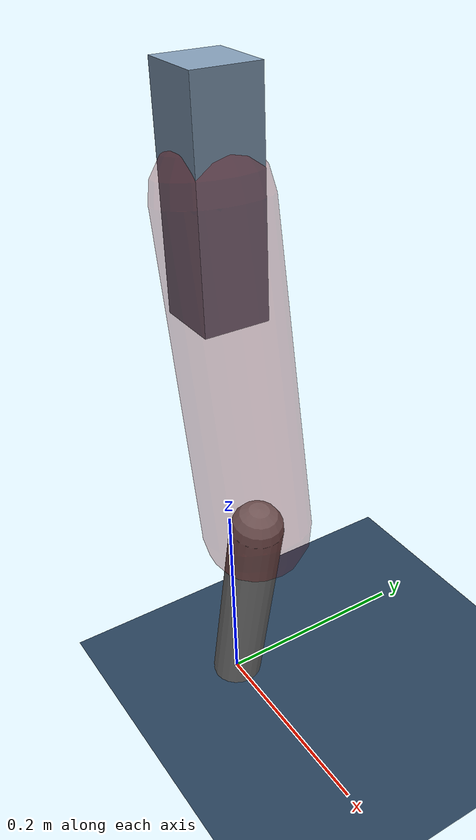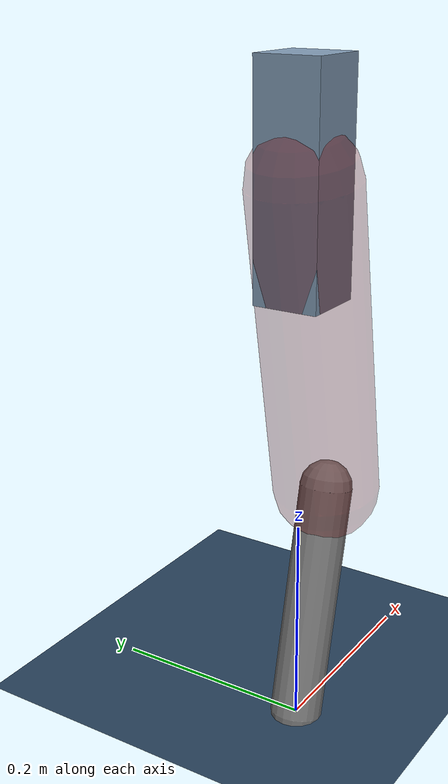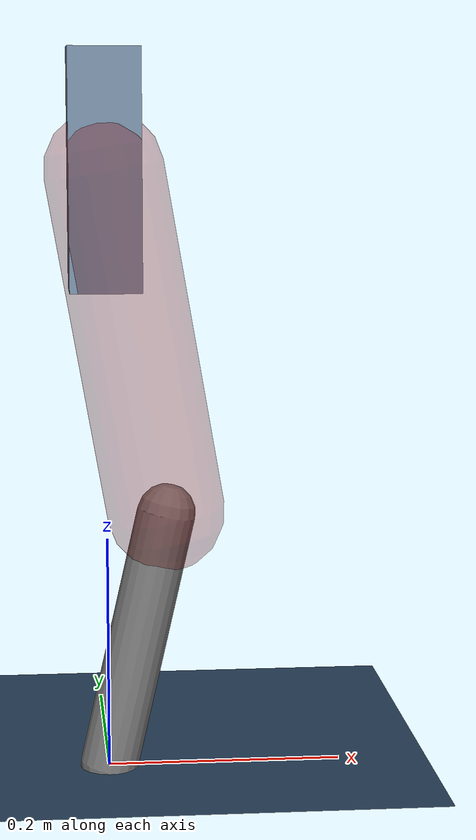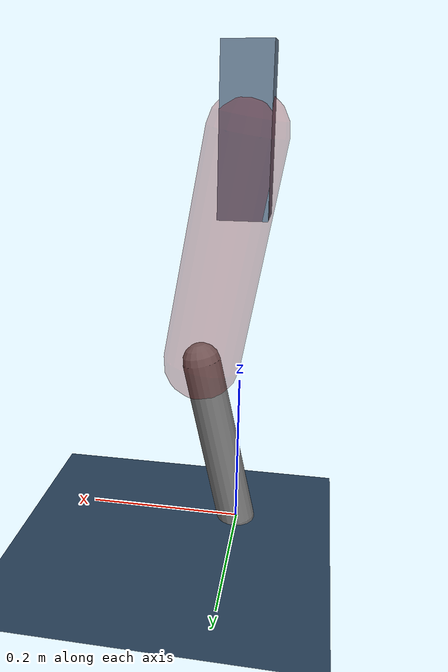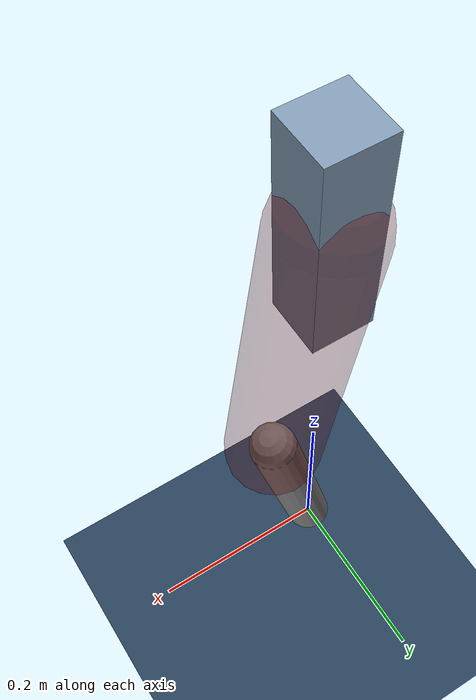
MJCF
<mujoco model="Hopper2D">
	<compiler inertiafromgeom="true" angle="radian" />
	<option timestep="0.001" integrator="implicit" cone="elliptic" solver="Newton" tolerance="1e-10" />

	<default>
		<geom contype="1" conaffinity="1" condim="3" friction="2 0.005 0.0001" solref="0.005 1" />
		<joint limited="true" damping="0.1" />
	</default>

	<asset>
		<texture name="skybox" type="skybox" builtin="gradient" rgb1=".4 .6 .8" rgb2="0 0 0" width="800" height="800" />
		<texture name="grid" type="2d" builtin="checker" rgb1=".1 .2 .3" rgb2=".2 .3 .4" width="300" height="300" mark="edge" markrgb=".2 .3 .4" />
		<material name="ground" texture="grid" texrepeat="1 1" texuniform="true" reflectance="0.1" />
		<material name="leg" rgba="0.5 0.6 0.7 1" />
	</asset>

	<worldbody>

		<geom name="floor" type="plane" size="5 5 0.25" material="ground" />

		<light directional="false" diffuse="0.8 0.8 0.8" specular="0.3 0.3 0.3" pos="0 0 2" dir="0 0 -1" />
		<light mode="targetbodycom" target="base" directional="false" diffuse="0.8 0.8 0.8" specular="0.3 0.3 0.3" pos="0 0 2" dir="0 0 -1" />

		<camera name="fixed" pos="0 -2 1" xyaxes="1 0 0 0 0 1" />
		<camera name="tracking" mode="trackcom" pos="0 -3 1" />

		<body name="root" pos="0 0 0.5122720340913778">
			<joint name="slide_x" type="slide" axis="1 0 0" range="-100 100" />
			<joint name="slide_z" type="slide" axis="0 0 1" range="0 10" />

			<body name="base" pos="0 0 0">
				<geom name="torso" type="box" size="0.03 0.03 0.1" mass="2.023" material="leg" />

				<body name="link1" pos="0 0 0" euler="0 1.3986288748196194 0">
					<joint type="hinge" axis="0 -1 0" pos="0 0 0" name="hinge1" limited="true" range="-3.14 3.14" stiffness="0" damping="0.1" />
					<geom name="thigh" type="capsule" fromto="0 0 0 0.29434685493812307 0 0" size="0.05" rgba="0.5 0 0 0.3" mass="0.9735365083329324" />

					<body name="link2" pos="0.29434685493812307 0 0" euler="0 0.39525682153686575 0">
						<joint type="hinge" axis="0 -1 0" pos="0 0 0" name="hinge2" limited="true" range="-3.14 3.14" stiffness="0" damping="0.1" />
						<geom name="shank" type="capsule" fromto="0 0 0 0.22792517915325472 0 0" size="0.025" mass="0.4242401433226038" />

					</body>
				</body>
			</body>
		</body>
	</worldbody>

	<actuator>
		<motor name="torque1" joint="hinge1" ctrlrange="-23.910722486297523 23.910722486297523" ctrllimited="true" gear="1" />
		<motor name="torque2" joint="hinge2" ctrlrange="-105.50958216977318 105.50958216977318" ctrllimited="true" gear="1" />
	</actuator>
</mujoco>
